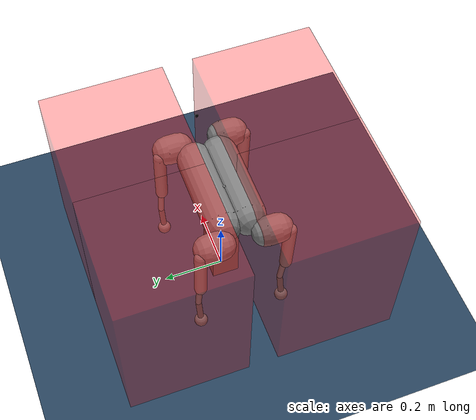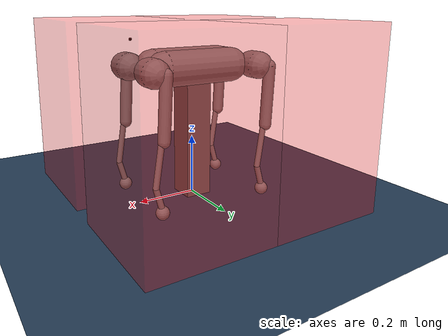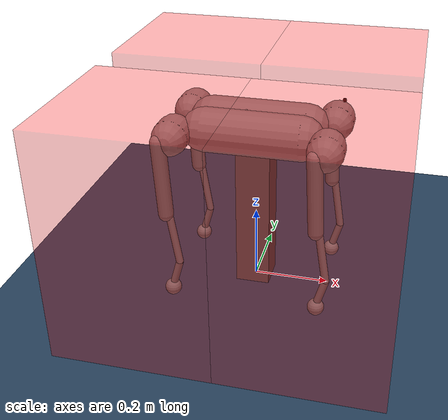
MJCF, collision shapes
<mujoco model="go2-mjx scene">
  <include file="models/go2_fixed_base_mjx_full_collision.xml"/>

  <statistic center="0 0 0.1" extent="0.8"/>

    <visual>
      <headlight diffuse="0.6 0.6 0.6" ambient="0.3 0.3 0.3" specular="0 0 0"/>
      <rgba haze="0.15 0.25 0.35 1"/>
      <global azimuth="120" elevation="-20"/>
    </visual>

    <asset>
        <texture type="skybox" builtin="gradient" rgb1="0.3 0.5 0.7" rgb2="0 0 0" width="512" height="3072"/>
        <texture type="2d" name="groundplane" builtin="checker" mark="edge" rgb1="0.2 0.3 0.4" rgb2="0.1 0.2 0.3"
            markrgb="0.8 0.8 0.8" width="300" height="300"/>
        <material name="groundplane" texture="groundplane" texuniform="true" texrepeat="5 5" reflectance="0.2"/>
    </asset>

    <worldbody>
        <light pos="0 0 1.5" dir="0 0 -1" directional="true"/>
        <camera name="default" pos="0.846 -1.465 0.916" xyaxes="0.866 0.500 0.000 -0.171 0.296 0.940"/>
        <geom name="floor" size="0 0 0.05" contype="0" conaffinity="0" type="plane" material="groundplane"/>
        <geom name="stand" pos="0 0 0.225" size="0.045 0.045 0.225" type="box" rgba="0.4 0.4 0.4 1" contype="1" conaffinity="1"/>
    </worldbody>

  <!-- Control Type -->
  <include file="controllers/position_control.xml"/>

</mujoco>

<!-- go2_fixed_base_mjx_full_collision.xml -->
<mujoco model="go2">
	<compiler angle="radian" meshdir="../assets" autolimits="true"/>

	<option iterations="5" ls_iterations="5" timestep="0.004" integrator="Euler">
	    <flag eulerdamp="disable"/>
	</option>

	<default>
        <default class="go2">
            <geom friction="0.6" contype="0" conaffinity="0" type="mesh"/>
            <joint axis="0 1 0" damping="0.0" armature="0.01"/>
            <default class="go2/abduction">
                <joint axis="1 0 0" range="-1.0472 1.0472" frictionloss="0.35"/>
            </default>
            <default class="go2/hip">
                <default class="go2/front_hip">
                    <joint range="-1.5708 3.4907" frictionloss="0.35"/>
                </default>
                <default class="go2/back_hip">
                    <joint range="-0.5236 4.5379" frictionloss="0.35"/>
                </default>
            </default>
            <default class="go2/knee">
                <joint range="-2.7227 -0.83776" frictionloss="1.35"/>
            </default>
            <default class="go2/foot">
                <site pos="-0.002 0 -0.213"/>
            </default>
            <default class="go2/collision">
                <geom group="3" contype="1" conaffinity="1"/>
				<default class="go2/collision/torso">
					<geom type="capsule" size="0.058 0.125" quat="1 0 1 0"/>
					<default class="go2/collision/torso/left">
						<geom pos="0 0.04 0"/>
					</default>
					<default class="go2/collision/torso/right">
						<geom pos="0 -0.04 0"/>
					</default>
				</default>
				<default class="go2/collision/hip">
					<geom type="capsule" size="0.046 0.02" pos="0 0.045 0" quat="1 1 0 0"/>
					<default class="go2/collision/hip/left">
						<geom pos="0 0.045 0"/>
					</default>
					<default class="go2/collision/hip/right">
						<geom pos="0 -0.045 0"/>
					</default>
				</default>
				<default class="go2/collision/thigh">
					<geom type="capsule" size="0.02" fromto="-0.02 0 0 -0.01 0 -0.2"/>
				</default>
				<default class="go2/collision/calf">
					<geom type="capsule" size="0.01"/>
					<default class="go2/collision/calf/upper">
						<geom type="capsule" size="0.01" fromto="0 0 0 0.02 0 -0.13"/>
					</default>
					<default class="go2/collision/calf/lower">
						<geom fromto="0.02 0 -0.13 0 0 -0.2"/>
					</default>
				</default>
                <default class="go2/collision/foot">
                    <geom type="sphere" size="0.022" pos="-0.002 0 -0.213" solimp="0.9 0.95 0.022" condim="3" friction="0.8 0.02 0.01"/>
                </default>
            </default>
        </default>
	</default>

	<asset>
        <material name="metal" rgba=".9 .95 .95 1"/>
        <material name="black" rgba="0 0 0 1"/>
        <material name="white" rgba="1 1 1 1"/>
        <material name="gray" rgba="0.671705 0.692426 0.774270 1"/>
        <mesh file="base_0.obj"/>
        <mesh file="base_1.obj"/>
        <mesh file="base_2.obj"/>
        <mesh file="base_3.obj"/>
        <mesh file="base_4.obj"/>
        <mesh file="hip_0.obj"/>
        <mesh file="hip_1.obj"/>
        <mesh file="thigh_0.obj"/>
        <mesh file="thigh_1.obj"/>
        <mesh file="thigh_mirror_0.obj"/>
        <mesh file="thigh_mirror_1.obj"/>
        <mesh file="calf_0.obj"/>
        <mesh file="calf_1.obj"/>
        <mesh file="calf_mirror_0.obj"/>
        <mesh file="calf_mirror_1.obj"/>
        <mesh file="foot.obj"/>
	</asset>

	<worldbody>
		<body name="base_link" pos="0 0 0.445" childclass="go2">

			<!-- IK Task Space: -->
			<geom type="box" size="0.2 0.2 0.3" pos="0.2 -0.25 -0.15" rgba="1 0 0 0.3" contype="0" conaffinity="0" group="5"/>
        	<geom type="box" size="0.2 0.2 0.3" pos="0.2 0.25 -0.15" rgba="1 0 0 0.3" contype="0" conaffinity="0" group="5"/>
			<geom type="box" size="0.2 0.2 0.3" pos="-0.2 -0.25 -0.15" rgba="1 0 0 0.3" contype="0" conaffinity="0" group="5"/>
			<geom type="box" size="0.2 0.2 0.3" pos="-0.2 0.25 -0.15" rgba="1 0 0 0.3" contype="0" conaffinity="0" group="5"/>

			<geom mesh="base_0" material="black" class="go2"/>
			<geom mesh="base_1" material="black" class="go2"/>
			<geom mesh="base_2" material="black" class="go2"/>
			<geom mesh="base_3" material="white" class="go2"/>
			<geom mesh="base_4" material="gray" class="go2"/>
			<geom name="left_torso_collision" class="go2/collision/torso/left"/>
			<geom name="right_torso_collision" class="go2/collision/torso/right"/>
			<site name="imu" pos="-0.02557 0 0.04232"/>
			<site name="vicon_marker" pos="0.22 0 0.095" material="black"/>
			<body name="front_right_hip" pos="0.1934 -0.0465 0">
				<inertial pos="-0.0054 -0.00194 -0.000105" quat="0.498237 0.505462 0.499245 0.497014"
                    mass="0.678"
                    diaginertia="0.00088403 0.000596003 0.000479967"/>
				<joint name="front_right_hip_joint" class="go2/abduction"/>
				<geom mesh="hip_0" material="metal" class="go2" quat="4.63268e-05 1 0 0"/>
				<geom mesh="hip_1" material="gray" class="go2" quat="4.63268e-05 1 0 0"/>
				<geom name="front_right_hip_collision" class="go2/collision/hip/right"/>
				<body name="front_right_thigh" pos="0 -0.0955 0">
					<inertial pos="-0.00374 0.0223 -0.0327" quat="0.551623 -0.0200632 0.0847635 0.829533"
						mass="1.152"
						diaginertia="0.00594973 0.00584149 0.000878787"/>
					<joint name="front_right_thigh_joint" class="go2/front_hip"/>
					<geom mesh="thigh_mirror_0" material="metal" class="go2"/>
					<geom mesh="thigh_mirror_1" material="gray" class="go2"/>
					<geom name="front_right_thigh_collision" class="go2/collision/thigh"/>
					<body name="front_right_calf" pos="0 0 -0.213">
						<inertial pos="0.00629595 0.000622121 -0.141417"
                            quat="0.703508 -0.00450087 0.00154099 0.710672"
                            mass="0.241352" diaginertia="0.0014901 0.00146356 5.31397e-05"/>
						<joint name="front_right_calf_joint" class="go2/knee"/>
						<geom mesh="calf_mirror_0" material="gray" class="go2"/>
						<geom mesh="calf_mirror_1" material="black" class="go2"/>
						<geom pos="0 0 -0.213" mesh="foot" class="go2" material="black"/>
						<geom name="front_right_calf_upper_collision" class="go2/collision/calf/upper"/>
						<geom name="front_right_calf_lower_collision" class="go2/collision/calf/lower"/>
						<geom name="front_right_foot_collision" class="go2/collision/foot"/>
						<site name="front_right_foot" class="go2/foot"/>
					</body>
				</body>
			</body>
			<body name="front_left_hip" pos="0.1934 0.0465 0">
				<inertial pos="-0.0054 0.00194 -0.000105" quat="0.497014 0.499245 0.505462 0.498237"
                    mass="0.678"
                    diaginertia="0.00088403 0.000596003 0.000479967"/>
				<joint name="front_left_hip_joint" class="go2/abduction"/>
				<geom mesh="hip_0" material="metal" class="go2"/>
				<geom mesh="hip_1" material="gray" class="go2"/>
				<geom name="front_left_hip_collision" class="go2/collision/hip/left"/>
				<body name="front_left_thigh" pos="0 0.0955 0">
					<inertial pos="-0.00374 -0.0223 -0.0327" quat="0.829533 0.0847635 -0.0200632 0.551623"
						mass="1.152"
						diaginertia="0.00594973 0.00584149 0.000878787"/>
					<joint name="front_left_thigh_joint" class="go2/front_hip"/>
					<geom mesh="thigh_0" material="metal" class="go2"/>
					<geom mesh="thigh_1" material="gray" class="go2"/>
					<geom name="front_left_thigh_collision" class="go2/collision/thigh"/>
					<body name="front_left_calf" pos="0 0 -0.213">
						<inertial pos="0.00629595 -0.000622121 -0.141417"
                            quat="0.710672 0.00154099 -0.00450087 0.703508"
                            mass="0.241352" diaginertia="0.0014901 0.00146356 5.31397e-05"/>
						<joint name="front_left_calf_joint" class="go2/knee"/>
						<geom mesh="calf_0" material="gray" class="go2"/>
						<geom mesh="calf_1" material="black" class="go2"/>
						<geom pos="0 0 -0.213" mesh="foot" class="go2" material="black"/>
						<geom name="front_left_calf_upper_collision" class="go2/collision/calf/upper"/>
						<geom name="front_left_calf_lower_collision" class="go2/collision/calf/lower"/>
						<geom name="front_left_foot_collision" class="go2/collision/foot"/>
						<site name="front_left_foot" class="go2/foot"/>
					</body>
				</body>
			</body>
			<body name="hind_right_hip" pos="-0.1934 -0.0465 0">
				<inertial pos="0.0054 -0.00194 -0.000105" quat="0.499245 0.497014 0.498237 0.505462"
                    mass="0.678"
                    diaginertia="0.00088403 0.000596003 0.000479967"/>
				<joint name="hind_right_hip_joint" class="go2/abduction"/>
				<geom mesh="hip_0" material="metal" class="go2"
				    quat="2.14617e-09 4.63268e-05 4.63268e-05 -1"/>
				<geom mesh="hip_1" material="gray" class="go2"
					quat="2.14617e-09 4.63268e-05 4.63268e-05 -1"/>
				<geom name="hind_right_hip_collision" class="go2/collision/hip/right"/>
				<body name="hind_right_thigh" pos="0 -0.0955 0">
					<inertial pos="-0.00374 0.0223 -0.0327" quat="0.551623 -0.0200632 0.0847635 0.829533"
						mass="1.152"
						diaginertia="0.00594973 0.00584149 0.000878787"/>
					<joint name="hind_right_thigh_joint" class="go2/back_hip"/>
					<geom mesh="thigh_mirror_0" material="metal" class="go2"/>
					<geom mesh="thigh_mirror_1" material="gray" class="go2"/>
					<geom name="hind_right_thigh_collision" class="go2/collision/thigh"/>
					<body name="hind_right_calf" pos="0 0 -0.213">
						<inertial pos="0.00629595 0.000622121 -0.141417"
                            quat="0.703508 -0.00450087 0.00154099 0.710672"
                            mass="0.241352" diaginertia="0.0014901 0.00146356 5.31397e-05"/>
						<joint name="hind_right_calf_joint" class="go2/knee"/>
						<geom mesh="calf_mirror_0" material="gray" class="go2"/>
						<geom mesh="calf_mirror_1" material="black" class="go2"/>
						<geom pos="0 0 -0.213" mesh="foot" class="go2" material="black"/>
						<geom name="hind_right_calf_upper_collision" class="go2/collision/calf/upper"/>
						<geom name="hind_right_calf_lower_collision" class="go2/collision/calf/lower"/>
						<geom name="hind_right_foot_collision" class="go2/collision/foot"/>
						<site name="hind_right_foot" class="go2/foot"/>
					</body>
				</body>
			</body>
			<body name="hind_left_hip" pos="-0.1934 0.0465 0">
				<inertial pos="0.0054 0.00194 -0.000105" quat="0.505462 0.498237 0.497014 0.499245"
                    mass="0.678"
                    diaginertia="0.00088403 0.000596003 0.000479967"/>
				<joint name="hind_left_hip_joint" class="go2/abduction"/>
				<geom mesh="hip_0" material="metal" class="go2" quat="4.63268e-05 0 1 0"/>
				<geom mesh="hip_1" material="gray" class="go2" quat="4.63268e-05 0 1 0"/>
				<geom name="hind_left_hip_collision" class="go2/collision/hip/left"/>
				<body name="hind_left_thigh" pos="0 0.0955 0">
					<inertial pos="-0.00374 -0.0223 -0.0327" quat="0.829533 0.0847635 -0.0200632 0.551623"
						mass="1.152"
						diaginertia="0.00594973 0.00584149 0.000878787"/>
					<joint name="hind_left_thigh_joint" class="go2/back_hip"/>
					<geom mesh="thigh_0" material="metal" class="go2"/>
					<geom mesh="thigh_1" material="gray" class="go2"/>
					<geom name="hind_left_thigh_collision" class="go2/collision/thigh"/>
					<body name="hind_left_calf" pos="0 0 -0.213">
						<inertial pos="0.00629595 -0.000622121 -0.141417"
                            quat="0.710672 0.00154099 -0.00450087 0.703508"
                            mass="0.241352" diaginertia="0.0014901 0.00146356 5.31397e-05"/>
						<joint name="hind_left_calf_joint" class="go2/knee"/>
						<geom mesh="calf_0" material="gray" class="go2"/>
						<geom mesh="calf_1" material="black" class="go2"/>
						<geom pos="0 0 -0.213" mesh="foot" class="go2" material="black"/>
						<geom name="hind_left_calf_upper_collision" class="go2/collision/calf/upper"/>
						<geom name="hind_left_calf_lower_collision" class="go2/collision/calf/lower"/>
						<geom name="hind_left_foot_collision" class="go2/collision/foot"/>
						<site name="hind_left_foot" class="go2/foot"/>
					</body>
				</body>
			</body>
		</body>
	</worldbody>

	<contact>
		<exclude body1="base_link" body2="front_right_hip"/>
		<exclude body1="base_link" body2="front_left_hip"/>
		<exclude body1="base_link" body2="hind_right_hip"/>
		<exclude body1="base_link" body2="hind_left_hip"/>
		<exclude body1="front_right_hip" body2="front_right_thigh"/>
		<exclude body1="front_left_hip" body2="front_left_thigh"/>
		<exclude body1="hind_right_hip" body2="hind_right_thigh"/>
		<exclude body1="hind_left_hip" body2="hind_left_thigh"/>
	</contact>

	<sensor>
		<!-- IMU: -->
		<gyro name="imu_gyro" site="imu"/>
		<framequat name="imu_orientation" objtype="site" objname="imu"/>
		<accelerometer name="imu_acceleration" site="imu"/>

		<!-- State Estimator: -->
		<velocimeter name="local_linear_velocity" site="imu"/>
		<framepos name="imu_position" objtype="site" objname="imu"/>
		<framelinvel name="front_right_global_linear_velocity" objtype="site" objname="front_right_foot"/>
		<framelinvel name="front_left_global_linear_velocity" objtype="site" objname="front_left_foot"/>
		<framelinvel name="hind_right_global_linear_velocity" objtype="site" objname="hind_right_foot"/>
		<framelinvel name="hind_left_global_linear_velocity" objtype="site" objname="hind_left_foot"/>
		<framepos name="front_right_foot_position" objtype="site" objname="front_right_foot" reftype="site" refname="imu"/>
		<framepos name="front_left_foot_position" objtype="site" objname="front_left_foot" reftype="site" refname="imu"/>
		<framepos name="hind_right_foot_position" objtype="site" objname="hind_right_foot" reftype="site" refname="imu"/>
		<framepos name="hind_left_foot_position" objtype="site" objname="hind_left_foot" reftype="site" refname="imu"/>

		<!-- Globals: -->
		<framezaxis name="upvector" objtype="site" objname="imu"/>
		<framexaxis name="forwardvector" objtype="site" objname="imu"/>
		<framelinvel name="global_linear_velocity" objtype="site" objname="imu"/>
		<frameangvel name="global_angular_velocity" objtype="site" objname="imu"/>
	</sensor>

</mujoco>

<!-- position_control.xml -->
<mujoco>

	<default>
		<position inheritrange="1" kp="35.0" kv="0.5"/>
		<default class="go2/abduction/position">
			<position forcerange="-23.7 23.7"/>
		</default>
		<default class="go2/hip/position">
			<position forcerange="-23.7 23.7"/>
		</default>
		<default class="go2/knee/position">
			<position forcerange="-45.43 45.43"/>
		</default>
	</default>

	<actuator>
        <position class="go2/abduction/position" name="front_right_hip" joint="front_right_hip_joint"/>
        <position class="go2/hip/position" name="front_right_thigh" joint="front_right_thigh_joint"/>
        <position class="go2/knee/position" name="front_right_calf" joint="front_right_calf_joint"/>
        <position class="go2/abduction/position" name="front_left_hip" joint="front_left_hip_joint"/>
        <position class="go2/hip/position" name="front_left_thigh" joint="front_left_thigh_joint"/>
        <position class="go2/knee/position" name="front_left_calf" joint="front_left_calf_joint"/>
        <position class="go2/abduction/position" name="hind_right_hip" joint="hind_right_hip_joint"/>
        <position class="go2/hip/position" name="hind_right_thigh" joint="hind_right_thigh_joint"/>
        <position class="go2/knee/position" name="hind_right_calf" joint="hind_right_calf_joint"/>
        <position class="go2/abduction/position" name="hind_left_hip" joint="hind_left_hip_joint"/>
        <position class="go2/hip/position" name="hind_left_thigh" joint="hind_left_thigh_joint"/>
        <position class="go2/knee/position" name="hind_left_calf" joint="hind_left_calf_joint"/>
	</actuator>

	<keyframe>
		<key name="home"
			qpos="0.0 0.9 -1.8 0.0 0.9 -1.8 0.0 0.9 -1.8 0.0 0.9 -1.8"
			ctrl="0 0.9 -1.8 0 0.9 -1.8 0 0.9 -1.8 0 0.9 -1.8"
		/>
  	</keyframe>

</mujoco>
